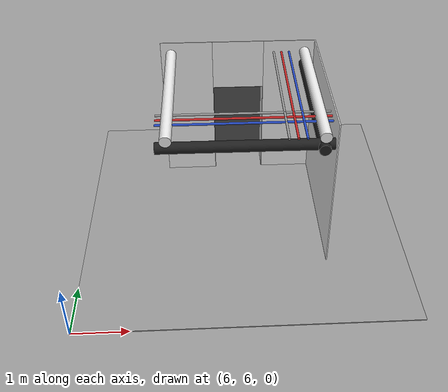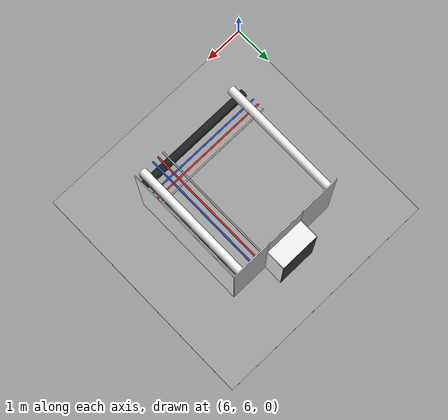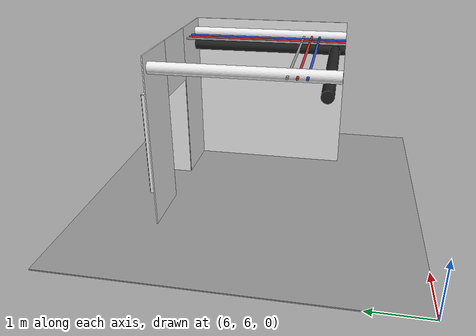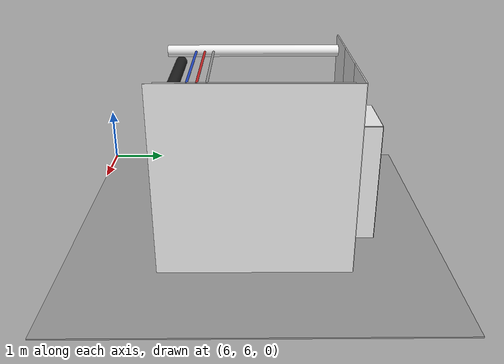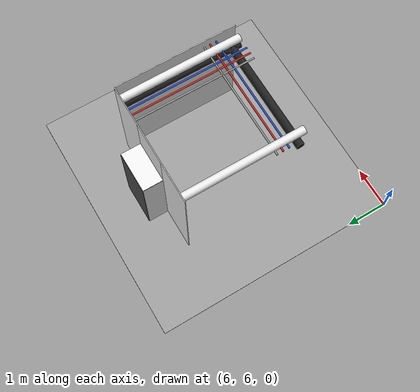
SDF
<sdf version="1.6">
 <world name="default">
  <model name="wall_front_3_3_0_2">
   <static>1</static>
   <pose>10.5 9.0 1.5 0.0 0.0 -1.57</pose>
   <link name="link">
    <collision name="collision"><geometry><box><size>3.0 0.02 3.0</size></box></geometry></collision>
    <visual name="visual">
     <material>
      <script><name>Gazebo/White</name><uri>file://media/materials/scripts/gazebo.material</uri></script>
     </material>
     <geometry><box><size>3.0 0.02 3.0</size></box></geometry>
    </visual>
   </link>
  </model>
  <model name="black_pipe_right_3_3_0_2">
   <static>1</static>
   <pose>9.0 9.0 2.76 0.0 0.0 -1.57</pose>
   <link name="link_0">
    <visual name="visual">
     <pose>1.3 0 -0.25 1.57 0 0</pose>
     <geometry><cylinder><radius>0.1</radius><length>3.0</length></cylinder></geometry>
     <material>
      <script><uri>file://media/materials/scripts/gazebo.material</uri><name>Gazebo/Black</name></script>
     </material>
    </visual>
    <collision name="collision">
     <pose>1.3 0 -0.25 1.57 0 0</pose>
     <geometry><cylinder><radius>0.1</radius><length>3.0</length></cylinder></geometry>
    </collision>
   </link>
  </model>
  <model name="grey_pipe_right_3_3_0_2">
   <static>1</static>
   <pose>9.0 9.0 2.76 0.0 0.0 -1.57</pose>
   <link name="link_0">
    <visual name="visual">
     <pose>0.7 0 0 1.57 0 0</pose>
     <geometry><cylinder><radius>0.02</radius><length>3.0</length></cylinder></geometry>
     <material>
      <script><uri>file://media/materials/scripts/gazebo.material</uri><name>Gazebo/Grey</name></script>
     </material>
    </visual>
    <collision name="collision">
     <pose>0.7 0 0 1.57 0 0</pose>
     <geometry><cylinder><radius>0.02</radius><length>3.0</length></cylinder></geometry>
    </collision>
   </link>
  </model>
  <model name="red_pipe_right_3_3_0_2">
   <static>1</static>
   <pose>9.0 9.0 2.76 0.0 0.0 -1.57</pose>
   <link name="link_0">
    <visual name="visual">
     <pose>0.85 0 0 1.57 0 0</pose>
     <geometry><cylinder><radius>0.02</radius><length>3.0</length></cylinder></geometry>
     <material>
      <script><uri>file://media/materials/scripts/gazebo.material</uri><name>Gazebo/Red</name></script>
     </material>
    </visual>
    <collision name="collision">
     <pose>0.85 0 0 1.57 0 0</pose>
     <geometry><cylinder><radius>0.02</radius><length>3.0</length></cylinder></geometry>
    </collision>
   </link>
  </model>
  <model name="blue_pipe_right_3_3_0_2">
   <static>1</static>
   <pose>9.0 9.0 2.76 0.0 0.0 -1.57</pose>
   <link name="link_0">
    <visual name="visual">
     <pose>1 0 0 1.57 0 0</pose>
     <geometry><cylinder><radius>0.02</radius><length>3.0</length></cylinder></geometry>
     <material>
      <script><uri>file://media/materials/scripts/gazebo.material</uri><name>Gazebo/Blue</name></script>
     </material>
    </visual>
    <collision name="collision">
     <pose>1 0 0 1.57 0 0</pose>
     <geometry><cylinder><radius>0.02</radius><length>3.0</length></cylinder></geometry>
    </collision>
   </link>
  </model>
  <model name="white_pipe_left_1_3_3_0_2">
   <static>1</static>
   <pose>9.0 9.0 2.76 0.0 0.0 0.0</pose>
   <link name="link_0">
    <visual name="visual">
     <pose>-1.3 0 0 1.57 0 0</pose>
     <geometry><cylinder><radius>0.1</radius><length>3.0</length></cylinder></geometry>
     <material>
      <script><uri>file://media/materials/scripts/gazebo.material</uri><name>Gazebo/White</name></script>
     </material>
    </visual>
    <collision name="collision">
     <pose>-1.3 0 0 1.57 0 0</pose>
     <geometry><cylinder><radius>0.1</radius><length>3.0</length></cylinder></geometry>
    </collision>
   </link>
  </model>
  <model name="white_pipe_right_1_3_3_0_2">
   <static>1</static>
   <pose>9.0 9.0 2.76 0.0 0.0 0.0</pose>
   <link name="link_0">
    <visual name="visual">
     <pose>1.3 0 0 1.57 0 0</pose>
     <geometry><cylinder><radius>0.1</radius><length>3.0</length></cylinder></geometry>
     <material>
      <script><uri>file://media/materials/scripts/gazebo.material</uri><name>Gazebo/White</name></script>
     </material>
    </visual>
    <collision name="collision">
     <pose>1.3 0 0 1.57 0 0</pose>
     <geometry><cylinder><radius>0.1</radius><length>3.0</length></cylinder></geometry>
    </collision>
   </link>
  </model>
  <model name="black_pipe_right_1_3_3_0_2">
   <static>1</static>
   <pose>9.0 9.0 2.76 0.0 0.0 0.0</pose>
   <link name="link_0">
    <visual name="visual">
     <pose>1.3 0 -0.25 1.57 0 0</pose>
     <geometry><cylinder><radius>0.1</radius><length>3.0</length></cylinder></geometry>
     <material>
      <script><uri>file://media/materials/scripts/gazebo.material</uri><name>Gazebo/Black</name></script>
     </material>
    </visual>
    <collision name="collision">
     <pose>1.3 0 -0.25 1.57 0 0</pose>
     <geometry><cylinder><radius>0.1</radius><length>3.0</length></cylinder></geometry>
    </collision>
   </link>
  </model>
  <model name="grey_pipe_right_1_3_3_0_2">
   <static>1</static>
   <pose>9.0 9.0 2.76 0.0 0.0 0.0</pose>
   <link name="link_0">
    <visual name="visual">
     <pose>0.7 0 0 1.57 0 0</pose>
     <geometry><cylinder><radius>0.02</radius><length>3.0</length></cylinder></geometry>
     <material>
      <script><uri>file://media/materials/scripts/gazebo.material</uri><name>Gazebo/Grey</name></script>
     </material>
    </visual>
    <collision name="collision">
     <pose>0.7 0 0 1.57 0 0</pose>
     <geometry><cylinder><radius>0.02</radius><length>3.0</length></cylinder></geometry>
    </collision>
   </link>
  </model>
  <model name="red_pipe_right_1_3_3_0_2">
   <static>1</static>
   <pose>9.0 9.0 2.76 0.0 0.0 0.0</pose>
   <link name="link_0">
    <visual name="visual">
     <pose>0.85 0 0 1.57 0 0</pose>
     <geometry><cylinder><radius>0.02</radius><length>3.0</length></cylinder></geometry>
     <material>
      <script><uri>file://media/materials/scripts/gazebo.material</uri><name>Gazebo/Red</name></script>
     </material>
    </visual>
    <collision name="collision">
     <pose>0.85 0 0 1.57 0 0</pose>
     <geometry><cylinder><radius>0.02</radius><length>3.0</length></cylinder></geometry>
    </collision>
   </link>
  </model>
  <model name="blue_pipe_right_1_3_3_0_2">
   <static>1</static>
   <pose>9.0 9.0 2.76 0.0 0.0 0.0</pose>
   <link name="link_0">
    <visual name="visual">
     <pose>1 0 0 1.57 0 0</pose>
     <geometry><cylinder><radius>0.02</radius><length>3.0</length></cylinder></geometry>
     <material>
      <script><uri>file://media/materials/scripts/gazebo.material</uri><name>Gazebo/Blue</name></script>
     </material>
    </visual>
    <collision name="collision">
     <pose>1 0 0 1.57 0 0</pose>
     <geometry><cylinder><radius>0.02</radius><length>3.0</length></cylinder></geometry>
    </collision>
   </link>
  </model>
  <model name="wall_left_front_left_3_3_0_2">
   <static>1</static>
   <pose>10.0 10.5 1.5 0.0 0.0 0.0</pose>
   <link name="link">
    <collision name="collision"><geometry><box><size>1.0 0.02 3.0</size></box></geometry></collision>
    <visual name="visual">
     <material>
      <script><name>Gazebo/White</name><uri>file://media/materials/scripts/gazebo.material</uri></script>
     </material>
     <geometry><box><size>1.0 0.02 3.0</size></box></geometry>
    </visual>
   </link>
  </model>
  <model name="wall_left_front_right_3_3_0_2">
   <static>1</static>
   <pose>8.0 10.5 1.5 0.0 0.0 0.0</pose>
   <link name="link">
    <collision name="collision"><geometry><box><size>1.0 0.02 3.0</size></box></geometry></collision>
    <visual name="visual">
     <material>
      <script><name>Gazebo/White</name><uri>file://media/materials/scripts/gazebo.material</uri></script>
     </material>
     <geometry><box><size>1.0 0.02 3.0</size></box></geometry>
    </visual>
   </link>
  </model>
  <model name="wall_left_front_up_3_3_0_2">
   <static>1</static>
   <pose>9.0 10.5 2.5 0.0 0.0 0.0</pose>
   <link name="link">
    <collision name="collision"><geometry><box><size>1.0 0.02 1.0</size></box></geometry></collision>
    <visual name="visual">
     <material>
      <script><name>Gazebo/White</name><uri>file://media/materials/scripts/gazebo.material</uri></script>
     </material>
     <geometry><box><size>1.0 0.02 1.0</size></box></geometry>
    </visual>
   </link>
  </model>
  <model name="wall_left_inside_back_3_3_0_2">
   <static>1</static>
   <pose>9.0 11.0 1.0 0.0 0.0 0.0</pose>
   <link name="link">
    <collision name="collision"><geometry><box><size>1 0.02 2</size></box></geometry></collision>
    <visual name="visual">
     <material>
      <script><name>Gazebo/DarkGrey</name><uri>file://media/materials/scripts/gazebo.material</uri></script>
     </material>
     <geometry><box><size>1 0.02 2</size></box></geometry>
    </visual>
   </link>
  </model>
  <model name="wall_left_inside_left_3_3_0_2">
   <static>1</static>
   <pose>9.5 10.75 1.0 0.0 0.0 -1.57</pose>
   <link name="link">
    <collision name="collision"><geometry><box><size>0.5 0.02 2</size></box></geometry></collision>
    <visual name="visual">
     <material>
      <script><name>Gazebo/White</name><uri>file://media/materials/scripts/gazebo.material</uri></script>
     </material>
     <geometry><box><size>0.5 0.02 2</size></box></geometry>
    </visual>
   </link>
  </model>
  <model name="wall_left_inside_right_3_3_0_2">
   <static>1</static>
   <pose>8.5 10.75 1.0 0.0 0.0 -1.57</pose>
   <link name="link">
    <collision name="collision"><geometry><box><size>0.5 0.02 2</size></box></geometry></collision>
    <visual name="visual">
     <material>
      <script><name>Gazebo/White</name><uri>file://media/materials/scripts/gazebo.material</uri></script>
     </material>
     <geometry><box><size>0.5 0.02 2</size></box></geometry>
    </visual>
   </link>
  </model>
  <model name="wall_left_inside_top_3_3_0_2">
   <static>1</static>
   <pose>9.0 10.75 2.0 1.57 0.0 0.0</pose>
   <link name="link">
    <collision name="collision"><geometry><box><size>1 0.02 0.5</size></box></geometry></collision>
    <visual name="visual">
     <material>
      <script><name>Gazebo/White</name><uri>file://media/materials/scripts/gazebo.material</uri></script>
     </material>
     <geometry><box><size>1 0.02 0.5</size></box></geometry>
    </visual>
   </link>
  </model>
  <model name="wall_bottom_3_3_0_2">
   <static>1</static>
   <pose>9.0 9.0 0.0 0.0 0.0 -1.57</pose>
   <link name="link">
    <collision name="collision"><geometry><box><size>6.0 6.0 0.02</size></box></geometry></collision>
    <visual name="visual">
     <material>
      <script><name>Gazebo/Grey</name><uri>file://media/materials/scripts/gazebo.material</uri></script>
     </material>
     <geometry><box><size>6.0 6.0 0.02</size></box></geometry>
    </visual>
   </link>
  </model>
 </world>
</sdf>
